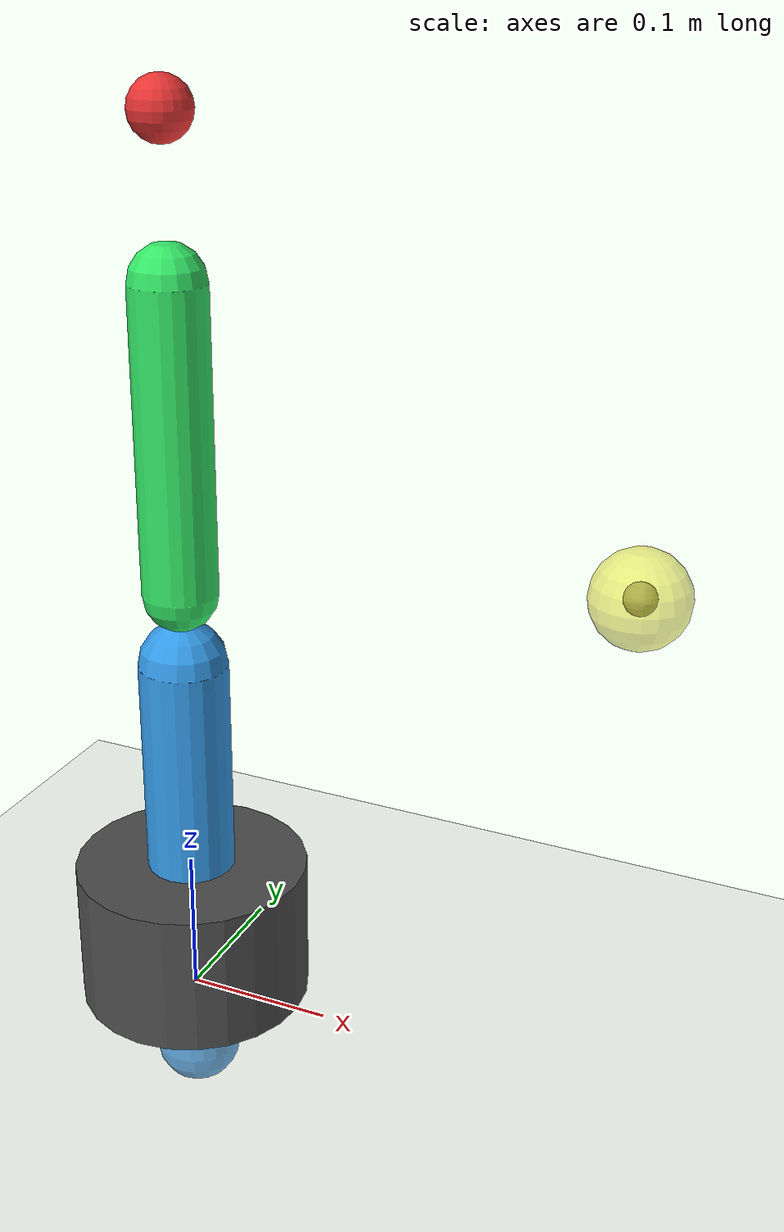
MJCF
<mujoco model="arm_reach">
  <compiler angle="radian"/>
  <option timestep="0.01" gravity="0 0 -9.81"/>

  <default>
    <joint armature="0.1" damping="2.0"/>
    <geom mass="0.5"/>
  </default>

  <worldbody>
    <geom name="floor" type="plane" size="3 3 0.1" rgba="0.8 0.8 0.8 1"/>

    <body name="base" pos="0 0 0.05">
      <inertial mass="2.0" pos="0 0 0" diaginertia="0.1 0.1 0.1"/>
      <geom type="cylinder" size="0.08 0.05" rgba="0.3 0.3 0.3 1"/>

      <body name="link1" pos="0 0 0.05">
        <inertial mass="0.5" pos="0 0 0.15" diaginertia="0.01 0.01 0.001"/>
        <geom type="capsule" size="0.03 0.15" rgba="0.2 0.6 0.9 1"/>
        <joint name="shoulder" type="hinge" axis="0 1 0" limited="true" range="-1.5708 1.5708"/>

        <body name="link2" pos="0 0 0.3">
          <inertial mass="0.3" pos="0 0 0.1" diaginertia="0.005 0.005 0.0005"/>
          <geom type="capsule" size="0.025 0.1" rgba="0.2 0.9 0.4 1"/>
          <joint name="elbow" type="hinge" axis="0 1 0" limited="true" range="-1.5708 1.5708"/>

          <body name="ee" pos="0 0 0.2">
            <inertial mass="0.1" pos="0 0 0" diaginertia="0.001 0.001 0.001"/>
            <geom type="sphere" size="0.02" rgba="0.9 0.2 0.2 1" contype="0" conaffinity="0"/>
            <site name="ee_site" pos="0 0 0" type="sphere" size="0.01"/>
          </body>
        </body>
      </body>
    </body>

    <body name="target" pos="0.3 0 0.35">
      <geom type="sphere" size="0.03" rgba="0.9 0.9 0.1 0.5" contype="0" conaffinity="0"/>
      <site name="target_site" pos="0 0 0" type="sphere" size="0.01"/>
    </body>
  </worldbody>

  <actuator>
    <motor name="shoulder_motor" joint="shoulder" gear="20"/>
    <motor name="elbow_motor" joint="elbow" gear="15"/>
  </actuator>

  <sensor>
    <jointpos name="shoulder_pos" joint="shoulder"/>
    <jointpos name="elbow_pos" joint="elbow"/>
    <framepos name="ee_pos" objtype="site" objname="ee_site"/>
    <framepos name="target_pos" objtype="site" objname="target_site"/>
  </sensor>
</mujoco>
